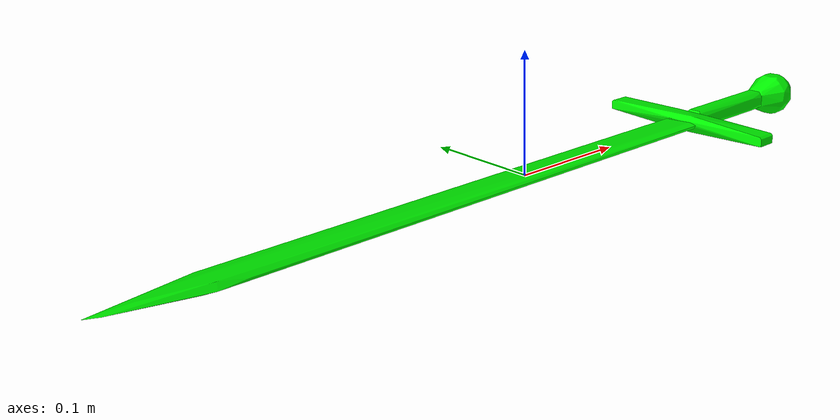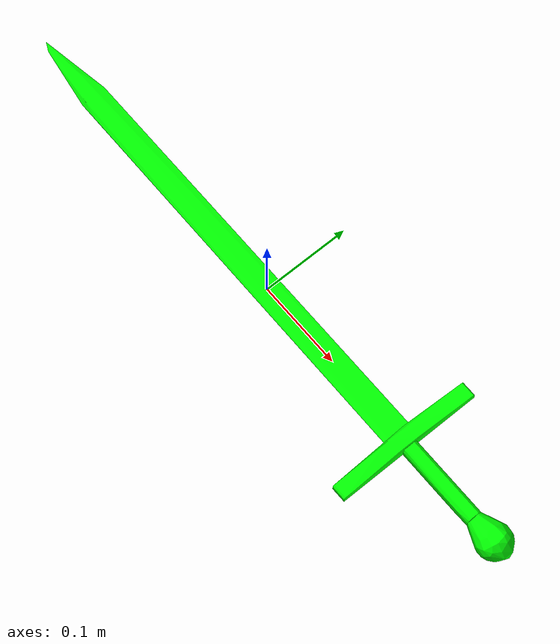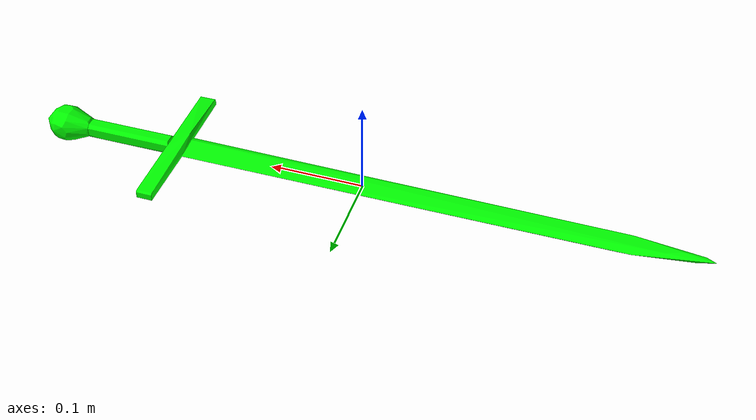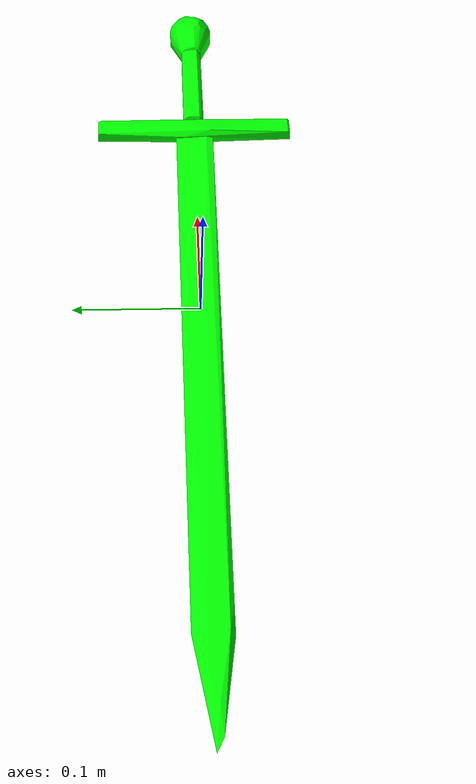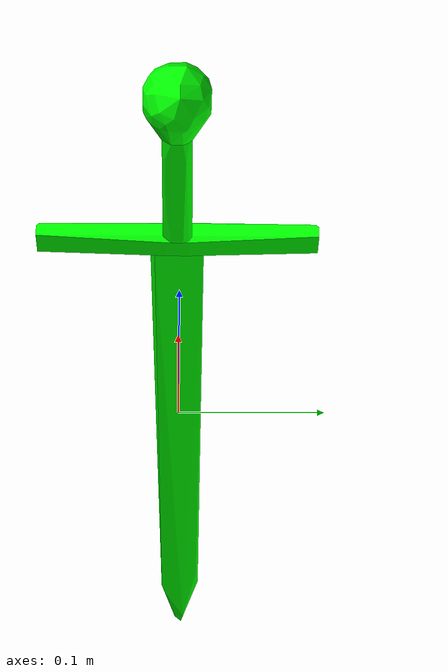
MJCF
<mujoco model="shapenetsem3">
  <asset>
    <mesh file="meshes/shapenetsem3/shapenetsem3_0.stl" name="shapenetsem3_0" scale="1 1 1"/>
    <mesh file="meshes/shapenetsem3/shapenetsem3_1.stl" name="shapenetsem3_1" scale="1 1 1"/>
    <mesh file="meshes/shapenetsem3/shapenetsem3_2.stl" name="shapenetsem3_2" scale="1 1 1"/>
    <mesh file="meshes/shapenetsem3/shapenetsem3_3.stl" name="shapenetsem3_3" scale="1 1 1"/>
  </asset>
  <worldbody>
    <body>
      <body name="collision">
        <geom pos="0 0 0" mesh="shapenetsem3_0" type="mesh" solimp="0.998 0.998 0.001" solref="0.001 1" density="100" friction="0.95 0.3 0.1" rgba="0 1 0 1" group="1" condim="4"/>
        <geom pos="0 0 0" mesh="shapenetsem3_1" type="mesh" solimp="0.998 0.998 0.001" solref="0.001 1" density="100" friction="0.95 0.3 0.1" rgba="0 1 0 1" group="1" condim="4"/>
        <geom pos="0 0 0" mesh="shapenetsem3_2" type="mesh" solimp="0.998 0.998 0.001" solref="0.001 1" density="100" friction="0.95 0.3 0.1" rgba="0 1 0 1" group="1" condim="4"/>
        <geom pos="0 0 0" mesh="shapenetsem3_3" type="mesh" solimp="0.998 0.998 0.001" solref="0.001 1" density="100" friction="0.95 0.3 0.1" rgba="0 1 0 1" group="1" condim="4"/>
      </body>
      <body name="visual">
        <geom pos="0 0 0" mesh="shapenetsem3_0" type="mesh" rgba="0 1 0 1" conaffinity="0" contype="0" group="0" mass="0.0001"/>
        <geom pos="0 0 0" mesh="shapenetsem3_1" type="mesh" rgba="0 1 0 1" conaffinity="0" contype="0" group="0" mass="0.0001"/>
        <geom pos="0 0 0" mesh="shapenetsem3_2" type="mesh" rgba="0 1 0 1" conaffinity="0" contype="0" group="0" mass="0.0001"/>
        <geom pos="0 0 0" mesh="shapenetsem3_3" type="mesh" rgba="0 1 0 1" conaffinity="0" contype="0" group="0" mass="0.0001"/>
      </body>
      <site rgba="0 0 0 0" size="0.005" pos="0 0 -0.06" name="bottom_site"/>
      <site rgba="0 0 0 0" size="0.005" pos="0 0 0.04" name="top_site"/>
      <site rgba="0 0 0 0" size="0.005" pos="0.025 0.025 0" name="horizontal_radius_site"/>
    </body>
  </worldbody>
</mujoco>
